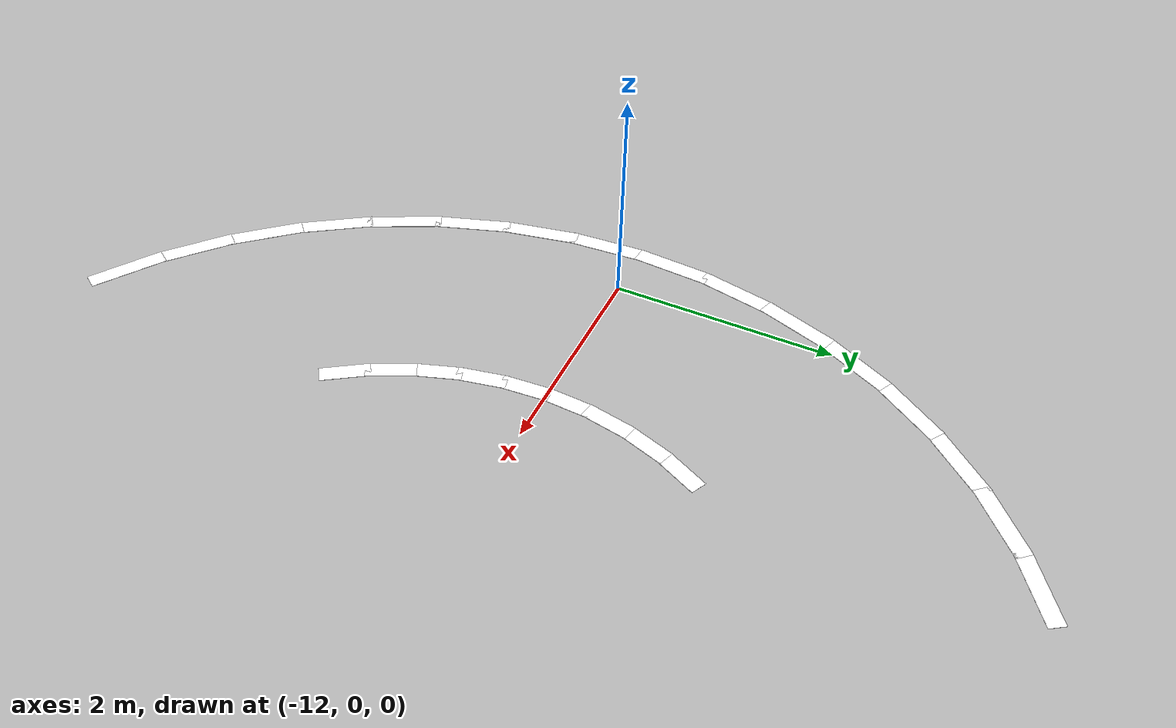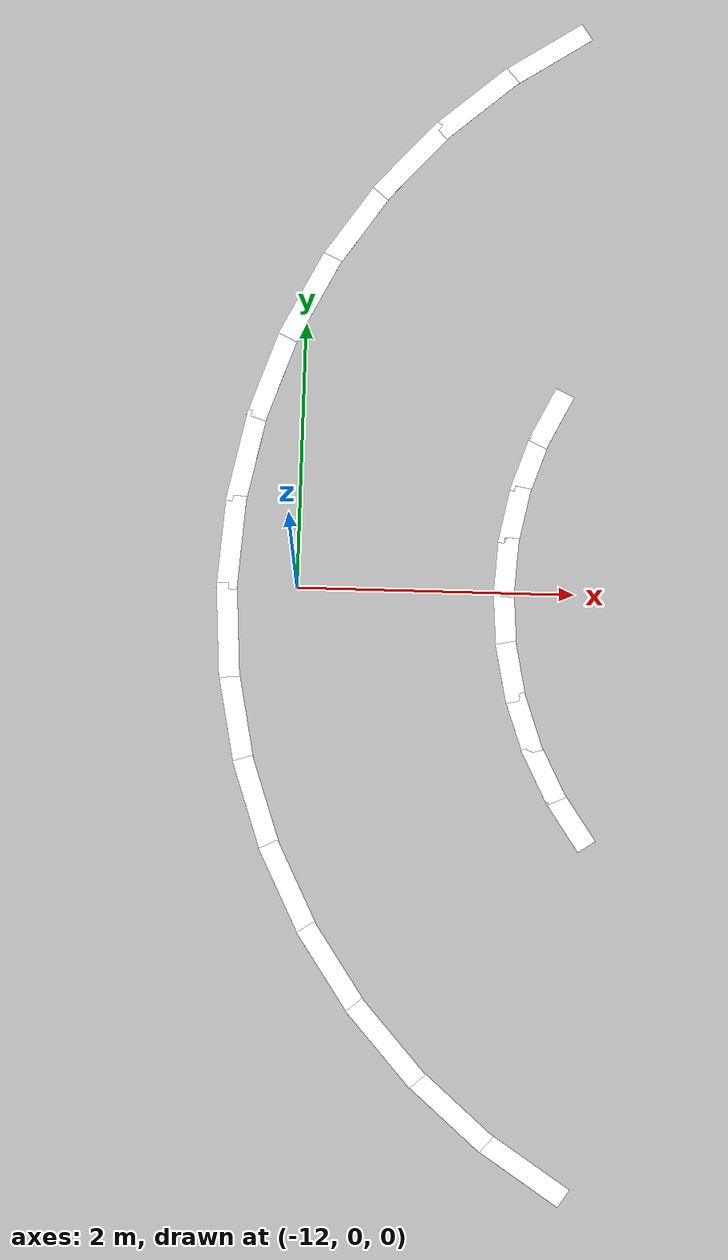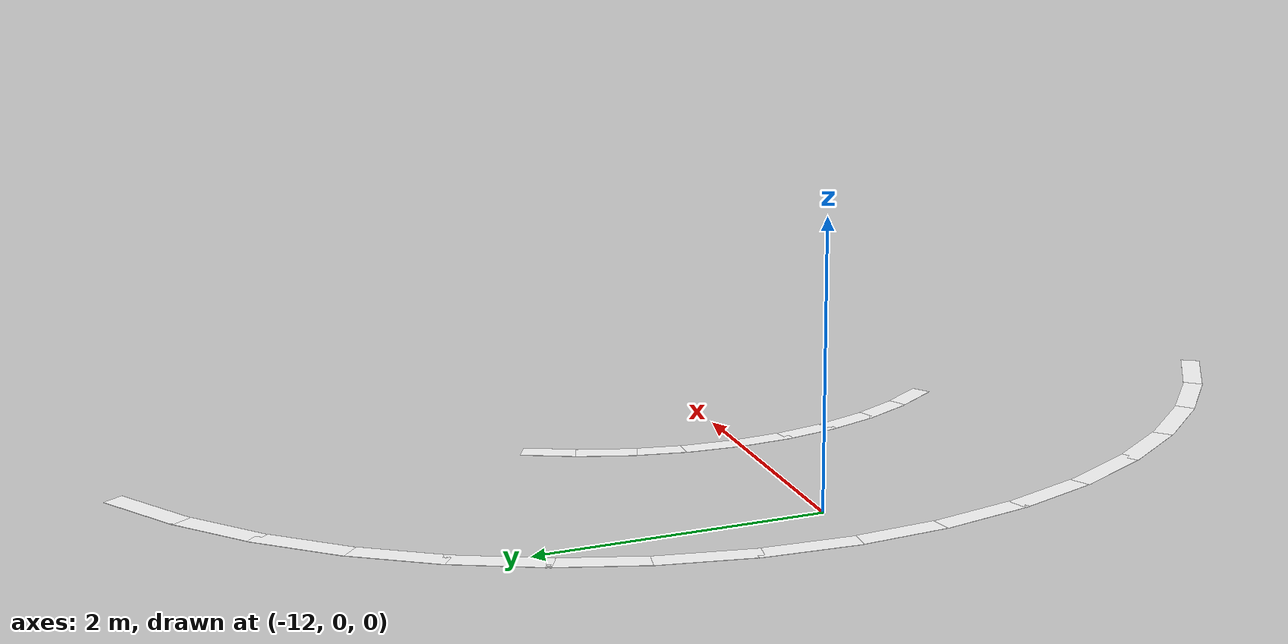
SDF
<sdf version="1.6">
 <world name="stadium_world">
  <model name="arc_left_out_4">
   <static>true</static>
   <pose>-10.27785116509801 4.157348061512727 0.001 0 0 3.730641276137879</pose>
   <link name="link">
    <visual name="visual">
     <geometry><box><size>0.7054346281523822 0.15 0.002</size></box></geometry>
     <material><ambient>1 1 1 1</ambient></material>
    </visual>
   </link>
  </model>
  <model name="arc_left_out_5">
   <static>true</static>
   <pose>-10.796729075500345 3.759199037394887 0.001 0 0 3.861540970037454</pose>
   <link name="link">
    <visual name="visual">
     <geometry><box><size>0.7054346281523822 0.15 0.002</size></box></geometry>
     <material><ambient>1 1 1 1</ambient></material>
    </visual>
   </link>
  </model>
  <model name="arc_left_out_6">
   <static>true</static>
   <pose>-11.259199037394886 3.2967290755003447 0.001 0 0 3.9924406639370287</pose>
   <link name="link">
    <visual name="visual">
     <geometry><box><size>0.7054346281523822 0.15 0.002</size></box></geometry>
     <material><ambient>1 1 1 1</ambient></material>
    </visual>
   </link>
  </model>
  <model name="arc_left_out_7">
   <static>true</static>
   <pose>-11.657348061512725 2.7778511650980127 0.001 0 0 4.123340357836604</pose>
   <link name="link">
    <visual name="visual">
     <geometry><box><size>0.7054346281523822 0.15 0.002</size></box></geometry>
     <material><ambient>1 1 1 1</ambient></material>
    </visual>
   </link>
  </model>
  <model name="arc_left_in_8">
   <static>true</static>
   <pose>-10.190618224598065 1.326866070657004 0.001 0 0 4.254240051736178</pose>
   <link name="link">
    <visual name="visual">
     <geometry><box><size>0.44326077689142934 0.15 0.002</size></box></geometry>
     <material><ambient>1 1 1 1</ambient></material>
    </visual>
   </link>
  </model>
  <model name="arc_left_out_8">
   <static>true</static>
   <pose>-11.98436370766344 2.2114434510950067 0.001 0 0 4.254240051736178</pose>
   <link name="link">
    <visual name="visual">
     <geometry><box><size>0.7054346281523822 0.15 0.002</size></box></geometry>
     <material><ambient>1 1 1 1</ambient></material>
    </visual>
   </link>
  </model>
  <model name="arc_left_in_9">
   <static>true</static>
   <pose>-10.340790388485317 0.9643183959094852 0.001 0 0 4.385139745635753</pose>
   <link name="link">
    <visual name="visual">
     <geometry><box><size>0.44326077689142934 0.15 0.002</size></box></geometry>
     <material><ambient>1 1 1 1</ambient></material>
    </visual>
   </link>
  </model>
  <model name="arc_left_out_9">
   <static>true</static>
   <pose>-12.234650647475528 1.6071973265158088 0.001 0 0 4.385139745635753</pose>
   <link name="link">
    <visual name="visual">
     <geometry><box><size>0.7054346281523822 0.15 0.002</size></box></geometry>
     <material><ambient>1 1 1 1</ambient></material>
    </visual>
   </link>
  </model>
  <model name="arc_left_in_10">
   <static>true</static>
   <pose>-10.442355841209691 0.5852709660483845 0.001 0 0 4.516039439535328</pose>
   <link name="link">
    <visual name="visual">
     <geometry><box><size>0.44326077689142934 0.15 0.002</size></box></geometry>
     <material><ambient>1 1 1 1</ambient></material>
    </visual>
   </link>
  </model>
  <model name="arc_left_out_10">
   <static>true</static>
   <pose>-12.403926402016152 0.9754516100806409 0.001 0 0 4.516039439535328</pose>
   <link name="link">
    <visual name="visual">
     <geometry><box><size>0.7054346281523822 0.15 0.002</size></box></geometry>
     <material><ambient>1 1 1 1</ambient></material>
    </visual>
   </link>
  </model>
  <model name="arc_left_in_11">
   <static>true</static>
   <pose>-10.49357676971581 0.19620938769042934 0.001 0 0 4.646939133434902</pose>
   <link name="link">
    <visual name="visual">
     <geometry><box><size>0.44326077689142934 0.15 0.002</size></box></geometry>
     <material><ambient>1 1 1 1</ambient></material>
    </visual>
   </link>
  </model>
  <model name="arc_left_out_11">
   <static>true</static>
   <pose>-12.489294616193018 0.3270156461507156 0.001 0 0 4.646939133434902</pose>
   <link name="link">
    <visual name="visual">
     <geometry><box><size>0.7054346281523822 0.15 0.002</size></box></geometry>
     <material><ambient>1 1 1 1</ambient></material>
    </visual>
   </link>
  </model>
  <model name="arc_left_in_12">
   <static>true</static>
   <pose>-10.49357676971581 -0.19620938769042862 0.001 0 0 4.777838827334477</pose>
   <link name="link">
    <visual name="visual">
     <geometry><box><size>0.44326077689142934 0.15 0.002</size></box></geometry>
     <material><ambient>1 1 1 1</ambient></material>
    </visual>
   </link>
  </model>
  <model name="arc_left_out_12">
   <static>true</static>
   <pose>-12.489294616193018 -0.3270156461507143 0.001 0 0 4.777838827334477</pose>
   <link name="link">
    <visual name="visual">
     <geometry><box><size>0.7054346281523822 0.15 0.002</size></box></geometry>
     <material><ambient>1 1 1 1</ambient></material>
    </visual>
   </link>
  </model>
  <model name="arc_left_in_13">
   <static>true</static>
   <pose>-10.442355841209691 -0.585270966048385 0.001 0 0 4.908738521234052</pose>
   <link name="link">
    <visual name="visual">
     <geometry><box><size>0.44326077689142934 0.15 0.002</size></box></geometry>
     <material><ambient>1 1 1 1</ambient></material>
    </visual>
   </link>
  </model>
  <model name="arc_left_out_13">
   <static>true</static>
   <pose>-12.403926402016152 -0.9754516100806419 0.001 0 0 4.908738521234052</pose>
   <link name="link">
    <visual name="visual">
     <geometry><box><size>0.7054346281523822 0.15 0.002</size></box></geometry>
     <material><ambient>1 1 1 1</ambient></material>
    </visual>
   </link>
  </model>
  <model name="arc_left_in_14">
   <static>true</static>
   <pose>-10.340790388485317 -0.9643183959094845 0.001 0 0 5.0396382151336265</pose>
   <link name="link">
    <visual name="visual">
     <geometry><box><size>0.44326077689142934 0.15 0.002</size></box></geometry>
     <material><ambient>1 1 1 1</ambient></material>
    </visual>
   </link>
  </model>
  <model name="arc_left_out_14">
   <static>true</static>
   <pose>-12.23465064747553 -1.6071973265158077 0.001 0 0 5.0396382151336265</pose>
   <link name="link">
    <visual name="visual">
     <geometry><box><size>0.7054346281523822 0.15 0.002</size></box></geometry>
     <material><ambient>1 1 1 1</ambient></material>
    </visual>
   </link>
  </model>
  <model name="arc_left_in_15">
   <static>true</static>
   <pose>-10.190618224598065 -1.3268660706570032 0.001 0 0 5.170537909033201</pose>
   <link name="link">
    <visual name="visual">
     <geometry><box><size>0.44326077689142934 0.15 0.002</size></box></geometry>
     <material><ambient>1 1 1 1</ambient></material>
    </visual>
   </link>
  </model>
  <model name="arc_left_out_15">
   <static>true</static>
   <pose>-11.98436370766344 -2.2114434510950054 0.001 0 0 5.170537909033201</pose>
   <link name="link">
    <visual name="visual">
     <geometry><box><size>0.7054346281523822 0.15 0.002</size></box></geometry>
     <material><ambient>1 1 1 1</ambient></material>
    </visual>
   </link>
  </model>
  <model name="arc_left_in_16">
   <static>true</static>
   <pose>-9.994408836907636 -1.6667106990588059 0.001 0 0 5.301437602932776</pose>
   <link name="link">
    <visual name="visual">
     <geometry><box><size>0.44326077689142934 0.15 0.002</size></box></geometry>
     <material><ambient>1 1 1 1</ambient></material>
    </visual>
   </link>
  </model>
  <model name="arc_left_out_16">
   <static>true</static>
   <pose>-11.657348061512728 -2.77785116509801 0.001 0 0 5.301437602932776</pose>
   <link name="link">
    <visual name="visual">
     <geometry><box><size>0.7054346281523822 0.15 0.002</size></box></geometry>
     <material><ambient>1 1 1 1</ambient></material>
    </visual>
   </link>
  </model>
  <model name="arc_left_out_17">
   <static>true</static>
   <pose>-11.259199037394888 -3.296729075500344 0.001 0 0 5.432337296832351</pose>
   <link name="link">
    <visual name="visual">
     <geometry><box><size>0.7054346281523822 0.15 0.002</size></box></geometry>
     <material><ambient>1 1 1 1</ambient></material>
    </visual>
   </link>
  </model>
  <model name="arc_left_out_18">
   <static>true</static>
   <pose>-10.796729075500345 -3.7591990373948865 0.001 0 0 5.563236990731925</pose>
   <link name="link">
    <visual name="visual">
     <geometry><box><size>0.7054346281523822 0.15 0.002</size></box></geometry>
     <material><ambient>1 1 1 1</ambient></material>
    </visual>
   </link>
  </model>
  <model name="arc_left_out_19">
   <static>true</static>
   <pose>-10.27785116509801 -4.157348061512726 0.001 0 0 5.6941366846315</pose>
   <link name="link">
    <visual name="visual">
     <geometry><box><size>0.7054346281523822 0.15 0.002</size></box></geometry>
     <material><ambient>1 1 1 1</ambient></material>
    </visual>
   </link>
  </model>
 </world>
</sdf>
